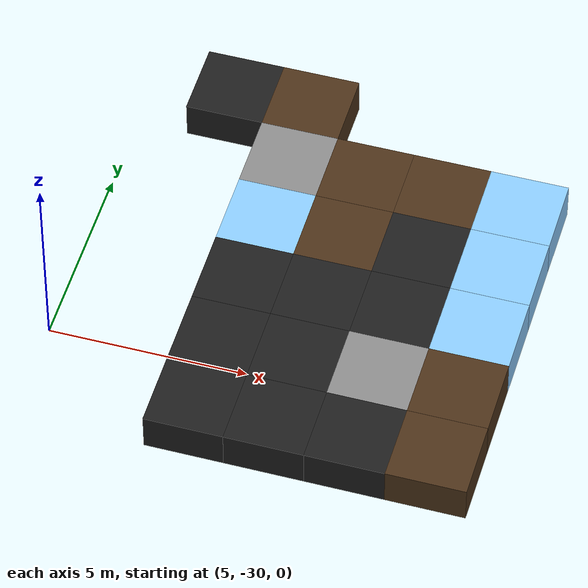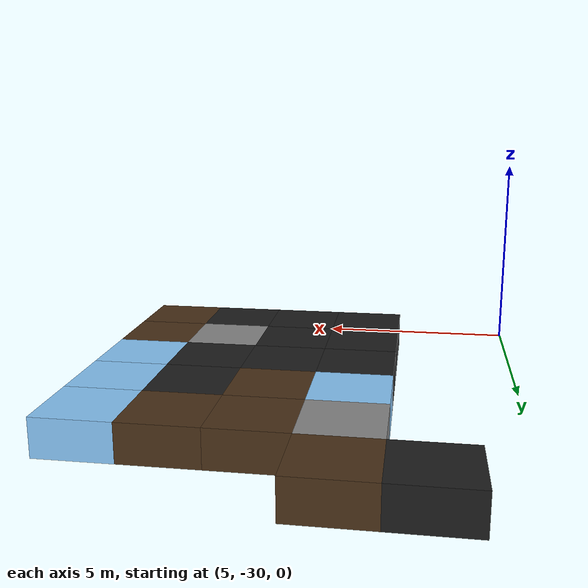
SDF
<sdf version="1.5">
 <world name="squares_example">
  <model name="tile_20_0">
   <static>true</static>
   <pose>9.000 -31.000 -0.500 0 0 0</pose>
   <link name="link">
    <collision name="col">
     <geometry><box><size>2.0 2.0 1.0</size></box></geometry>
     <surface>
      <friction>
       <ode><mu>0.4</mu><mu2>0.15</mu2><fdir1>1 0 0</fdir1><slip1>0.0</slip1><slip2>0.0</slip2></ode>
       <torsional>
        <coefficient>0.03</coefficient>
        <use_patch_radius>false</use_patch_radius>
        <surface_radius>0.12</surface_radius>
        <ode><slip>0.0</slip></ode>
       </torsional>
      </friction>
      <bounce><restitution_coefficient>0.0</restitution_coefficient><threshold>0.1</threshold></bounce>
      <contact>
       <ode><kp>1000000000.0</kp><kd>1000000.0</kd><max_vel>0.01</max_vel><min_depth>0.0</min_depth></ode>
      </contact>
     </surface>
    </collision>
    <visual name="visual">
     <geometry><box><size>2.0 2.0 1.0</size></box></geometry>
     <material>
      <diffuse>0.12 0.12 0.12 1</diffuse>
      <ambient>0 0 0 0</ambient>
      <specular>0 0 0 1</specular>
      <emissive>0 0 0 1</emissive>
     </material>
    </visual>
   </link>
  </model>
  <model name="tile_21_0">
   <static>true</static>
   <pose>11.000 -31.000 -0.500 0 0 0</pose>
   <link name="link">
    <collision name="col">
     <geometry><box><size>2.0 2.0 1.0</size></box></geometry>
     <surface>
      <friction>
       <ode><mu>0.4</mu><mu2>0.15</mu2><fdir1>1 0 0</fdir1><slip1>0.0</slip1><slip2>0.0</slip2></ode>
       <torsional>
        <coefficient>0.03</coefficient>
        <use_patch_radius>false</use_patch_radius>
        <surface_radius>0.12</surface_radius>
        <ode><slip>0.0</slip></ode>
       </torsional>
      </friction>
      <bounce><restitution_coefficient>0.0</restitution_coefficient><threshold>0.1</threshold></bounce>
      <contact>
       <ode><kp>1000000000.0</kp><kd>1000000.0</kd><max_vel>0.01</max_vel><min_depth>0.0</min_depth></ode>
      </contact>
     </surface>
    </collision>
    <visual name="visual">
     <geometry><box><size>2.0 2.0 1.0</size></box></geometry>
     <material>
      <diffuse>0.12 0.12 0.12 1</diffuse>
      <ambient>0 0 0 0</ambient>
      <specular>0 0 0 1</specular>
      <emissive>0 0 0 1</emissive>
     </material>
    </visual>
   </link>
  </model>
  <model name="tile_22_0">
   <static>true</static>
   <pose>13.000 -31.000 -0.500 0 0 0</pose>
   <link name="link">
    <collision name="col">
     <geometry><box><size>2.0 2.0 1.0</size></box></geometry>
     <surface>
      <friction>
       <ode><mu>0.4</mu><mu2>0.15</mu2><fdir1>1 0 0</fdir1><slip1>0.0</slip1><slip2>0.0</slip2></ode>
       <torsional>
        <coefficient>0.03</coefficient>
        <use_patch_radius>false</use_patch_radius>
        <surface_radius>0.12</surface_radius>
        <ode><slip>0.0</slip></ode>
       </torsional>
      </friction>
      <bounce><restitution_coefficient>0.0</restitution_coefficient><threshold>0.1</threshold></bounce>
      <contact>
       <ode><kp>1000000000.0</kp><kd>1000000.0</kd><max_vel>0.01</max_vel><min_depth>0.0</min_depth></ode>
      </contact>
     </surface>
    </collision>
    <visual name="visual">
     <geometry><box><size>2.0 2.0 1.0</size></box></geometry>
     <material>
      <diffuse>0.12 0.12 0.12 1</diffuse>
      <ambient>0 0 0 0</ambient>
      <specular>0 0 0 1</specular>
      <emissive>0 0 0 1</emissive>
     </material>
    </visual>
   </link>
  </model>
  <model name="tile_23_0">
   <static>true</static>
   <pose>15.000 -31.000 -0.500 0 0 0</pose>
   <link name="link">
    <collision name="col">
     <geometry><box><size>2.0 2.0 1.0</size></box></geometry>
     <surface>
      <friction>
       <ode><mu>0.6</mu><mu2>0.4</mu2><fdir1>1 0 0</fdir1><slip1>0.08</slip1><slip2>0.08</slip2></ode>
       <torsional>
        <coefficient>0.03</coefficient>
        <use_patch_radius>false</use_patch_radius>
        <surface_radius>0.12</surface_radius>
        <ode><slip>0.0</slip></ode>
       </torsional>
      </friction>
      <bounce><restitution_coefficient>0.0</restitution_coefficient><threshold>0.1</threshold></bounce>
      <contact>
       <ode><kp>1000000.0</kp><kd>10000.0</kd><max_vel>0.01</max_vel><min_depth>0.0</min_depth></ode>
      </contact>
     </surface>
    </collision>
    <visual name="visual">
     <geometry><box><size>2.0 2.0 1.0</size></box></geometry>
     <material>
      <diffuse>0.30 0.20 0.10 1</diffuse>
      <ambient>0 0 0 0</ambient>
      <specular>0 0 0 1</specular>
      <emissive>0 0 0 1</emissive>
     </material>
    </visual>
   </link>
  </model>
  <model name="tile_20_1">
   <static>true</static>
   <pose>9.000 -29.000 -0.500 0 0 0</pose>
   <link name="link">
    <collision name="col">
     <geometry><box><size>2.0 2.0 1.0</size></box></geometry>
     <surface>
      <friction>
       <ode><mu>0.4</mu><mu2>0.15</mu2><fdir1>1 0 0</fdir1><slip1>0.0</slip1><slip2>0.0</slip2></ode>
       <torsional>
        <coefficient>0.03</coefficient>
        <use_patch_radius>false</use_patch_radius>
        <surface_radius>0.12</surface_radius>
        <ode><slip>0.0</slip></ode>
       </torsional>
      </friction>
      <bounce><restitution_coefficient>0.0</restitution_coefficient><threshold>0.1</threshold></bounce>
      <contact>
       <ode><kp>1000000000.0</kp><kd>1000000.0</kd><max_vel>0.01</max_vel><min_depth>0.0</min_depth></ode>
      </contact>
     </surface>
    </collision>
    <visual name="visual">
     <geometry><box><size>2.0 2.0 1.0</size></box></geometry>
     <material>
      <diffuse>0.12 0.12 0.12 1</diffuse>
      <ambient>0 0 0 0</ambient>
      <specular>0 0 0 1</specular>
      <emissive>0 0 0 1</emissive>
     </material>
    </visual>
   </link>
  </model>
  <model name="tile_21_1">
   <static>true</static>
   <pose>11.000 -29.000 -0.500 0 0 0</pose>
   <link name="link">
    <collision name="col">
     <geometry><box><size>2.0 2.0 1.0</size></box></geometry>
     <surface>
      <friction>
       <ode><mu>0.4</mu><mu2>0.15</mu2><fdir1>1 0 0</fdir1><slip1>0.0</slip1><slip2>0.0</slip2></ode>
       <torsional>
        <coefficient>0.03</coefficient>
        <use_patch_radius>false</use_patch_radius>
        <surface_radius>0.12</surface_radius>
        <ode><slip>0.0</slip></ode>
       </torsional>
      </friction>
      <bounce><restitution_coefficient>0.0</restitution_coefficient><threshold>0.1</threshold></bounce>
      <contact>
       <ode><kp>1000000000.0</kp><kd>1000000.0</kd><max_vel>0.01</max_vel><min_depth>0.0</min_depth></ode>
      </contact>
     </surface>
    </collision>
    <visual name="visual">
     <geometry><box><size>2.0 2.0 1.0</size></box></geometry>
     <material>
      <diffuse>0.12 0.12 0.12 1</diffuse>
      <ambient>0 0 0 0</ambient>
      <specular>0 0 0 1</specular>
      <emissive>0 0 0 1</emissive>
     </material>
    </visual>
   </link>
  </model>
  <model name="tile_22_1">
   <static>true</static>
   <pose>13.000 -29.000 -0.500 0 0 0</pose>
   <link name="link">
    <collision name="col">
     <geometry><box><size>2.0 2.0 1.0</size></box></geometry>
     <surface>
      <friction>
       <ode><mu>0.8</mu><mu2>0.3</mu2><fdir1>1 0 0</fdir1><slip1>0.0</slip1><slip2>0.0</slip2></ode>
       <torsional>
        <coefficient>0.03</coefficient>
        <use_patch_radius>false</use_patch_radius>
        <surface_radius>0.12</surface_radius>
        <ode><slip>0.0</slip></ode>
       </torsional>
      </friction>
      <bounce><restitution_coefficient>0.0</restitution_coefficient><threshold>0.1</threshold></bounce>
      <contact>
       <ode><kp>10000000000.0</kp><kd>10000000.0</kd><max_vel>0.01</max_vel><min_depth>0.0</min_depth></ode>
      </contact>
     </surface>
    </collision>
    <visual name="visual">
     <geometry><box><size>2.0 2.0 1.0</size></box></geometry>
     <material>
      <diffuse>0.55 0.55 0.55 1</diffuse>
      <ambient>0 0 0 0</ambient>
      <specular>0 0 0 1</specular>
      <emissive>0 0 0 1</emissive>
     </material>
    </visual>
   </link>
  </model>
  <model name="tile_23_1">
   <static>true</static>
   <pose>15.000 -29.000 -0.500 0 0 0</pose>
   <link name="link">
    <collision name="col">
     <geometry><box><size>2.0 2.0 1.0</size></box></geometry>
     <surface>
      <friction>
       <ode><mu>0.6</mu><mu2>0.4</mu2><fdir1>1 0 0</fdir1><slip1>0.08</slip1><slip2>0.08</slip2></ode>
       <torsional>
        <coefficient>0.03</coefficient>
        <use_patch_radius>false</use_patch_radius>
        <surface_radius>0.12</surface_radius>
        <ode><slip>0.0</slip></ode>
       </torsional>
      </friction>
      <bounce><restitution_coefficient>0.0</restitution_coefficient><threshold>0.1</threshold></bounce>
      <contact>
       <ode><kp>1000000.0</kp><kd>10000.0</kd><max_vel>0.01</max_vel><min_depth>0.0</min_depth></ode>
      </contact>
     </surface>
    </collision>
    <visual name="visual">
     <geometry><box><size>2.0 2.0 1.0</size></box></geometry>
     <material>
      <diffuse>0.30 0.20 0.10 1</diffuse>
      <ambient>0 0 0 0</ambient>
      <specular>0 0 0 1</specular>
      <emissive>0 0 0 1</emissive>
     </material>
    </visual>
   </link>
  </model>
  <model name="tile_20_2">
   <static>true</static>
   <pose>9.000 -27.000 -0.500 0 0 0</pose>
   <link name="link">
    <collision name="col">
     <geometry><box><size>2.0 2.0 1.0</size></box></geometry>
     <surface>
      <friction>
       <ode><mu>0.4</mu><mu2>0.15</mu2><fdir1>1 0 0</fdir1><slip1>0.0</slip1><slip2>0.0</slip2></ode>
       <torsional>
        <coefficient>0.03</coefficient>
        <use_patch_radius>false</use_patch_radius>
        <surface_radius>0.12</surface_radius>
        <ode><slip>0.0</slip></ode>
       </torsional>
      </friction>
      <bounce><restitution_coefficient>0.0</restitution_coefficient><threshold>0.1</threshold></bounce>
      <contact>
       <ode><kp>1000000000.0</kp><kd>1000000.0</kd><max_vel>0.01</max_vel><min_depth>0.0</min_depth></ode>
      </contact>
     </surface>
    </collision>
    <visual name="visual">
     <geometry><box><size>2.0 2.0 1.0</size></box></geometry>
     <material>
      <diffuse>0.12 0.12 0.12 1</diffuse>
      <ambient>0 0 0 0</ambient>
      <specular>0 0 0 1</specular>
      <emissive>0 0 0 1</emissive>
     </material>
    </visual>
   </link>
  </model>
  <model name="tile_21_2">
   <static>true</static>
   <pose>11.000 -27.000 -0.500 0 0 0</pose>
   <link name="link">
    <collision name="col">
     <geometry><box><size>2.0 2.0 1.0</size></box></geometry>
     <surface>
      <friction>
       <ode><mu>0.4</mu><mu2>0.15</mu2><fdir1>1 0 0</fdir1><slip1>0.0</slip1><slip2>0.0</slip2></ode>
       <torsional>
        <coefficient>0.03</coefficient>
        <use_patch_radius>false</use_patch_radius>
        <surface_radius>0.12</surface_radius>
        <ode><slip>0.0</slip></ode>
       </torsional>
      </friction>
      <bounce><restitution_coefficient>0.0</restitution_coefficient><threshold>0.1</threshold></bounce>
      <contact>
       <ode><kp>1000000000.0</kp><kd>1000000.0</kd><max_vel>0.01</max_vel><min_depth>0.0</min_depth></ode>
      </contact>
     </surface>
    </collision>
    <visual name="visual">
     <geometry><box><size>2.0 2.0 1.0</size></box></geometry>
     <material>
      <diffuse>0.12 0.12 0.12 1</diffuse>
      <ambient>0 0 0 0</ambient>
      <specular>0 0 0 1</specular>
      <emissive>0 0 0 1</emissive>
     </material>
    </visual>
   </link>
  </model>
  <model name="tile_22_2">
   <static>true</static>
   <pose>13.000 -27.000 -0.500 0 0 0</pose>
   <link name="link">
    <collision name="col">
     <geometry><box><size>2.0 2.0 1.0</size></box></geometry>
     <surface>
      <friction>
       <ode><mu>0.4</mu><mu2>0.15</mu2><fdir1>1 0 0</fdir1><slip1>0.0</slip1><slip2>0.0</slip2></ode>
       <torsional>
        <coefficient>0.03</coefficient>
        <use_patch_radius>false</use_patch_radius>
        <surface_radius>0.12</surface_radius>
        <ode><slip>0.0</slip></ode>
       </torsional>
      </friction>
      <bounce><restitution_coefficient>0.0</restitution_coefficient><threshold>0.1</threshold></bounce>
      <contact>
       <ode><kp>1000000000.0</kp><kd>1000000.0</kd><max_vel>0.01</max_vel><min_depth>0.0</min_depth></ode>
      </contact>
     </surface>
    </collision>
    <visual name="visual">
     <geometry><box><size>2.0 2.0 1.0</size></box></geometry>
     <material>
      <diffuse>0.12 0.12 0.12 1</diffuse>
      <ambient>0 0 0 0</ambient>
      <specular>0 0 0 1</specular>
      <emissive>0 0 0 1</emissive>
     </material>
    </visual>
   </link>
  </model>
  <model name="tile_23_2">
   <static>true</static>
   <pose>15.000 -27.000 -0.500 0 0 0</pose>
   <link name="link">
    <collision name="col">
     <geometry><box><size>2.0 2.0 1.0</size></box></geometry>
     <surface>
      <friction>
       <ode><mu>0.03</mu><mu2>0.02</mu2><fdir1>1 0 0</fdir1><slip1>0.03</slip1><slip2>0.03</slip2></ode>
       <torsional>
        <coefficient>0.005</coefficient>
        <use_patch_radius>false</use_patch_radius>
        <surface_radius>0.12</surface_radius>
        <ode><slip>0.01</slip></ode>
       </torsional>
      </friction>
      <bounce><restitution_coefficient>0.0</restitution_coefficient><threshold>0.1</threshold></bounce>
      <contact>
       <ode><kp>10000000.0</kp><kd>1000.0</kd><max_vel>0.01</max_vel><min_depth>0.0</min_depth></ode>
      </contact>
     </surface>
    </collision>
    <visual name="visual">
     <geometry><box><size>2.0 2.0 1.0</size></box></geometry>
     <material>
      <diffuse>0.55 0.80 1.00 1</diffuse>
      <ambient>0 0 0 0</ambient>
      <specular>0 0 0 1</specular>
      <emissive>0 0 0 1</emissive>
     </material>
    </visual>
   </link>
  </model>
  <model name="tile_20_3">
   <static>true</static>
   <pose>9.000 -25.000 -0.500 0 0 0</pose>
   <link name="link">
    <collision name="col">
     <geometry><box><size>2.0 2.0 1.0</size></box></geometry>
     <surface>
      <friction>
       <ode><mu>0.03</mu><mu2>0.02</mu2><fdir1>1 0 0</fdir1><slip1>0.03</slip1><slip2>0.03</slip2></ode>
       <torsional>
        <coefficient>0.005</coefficient>
        <use_patch_radius>false</use_patch_radius>
        <surface_radius>0.12</surface_radius>
        <ode><slip>0.01</slip></ode>
       </torsional>
      </friction>
      <bounce><restitution_coefficient>0.0</restitution_coefficient><threshold>0.1</threshold></bounce>
      <contact>
       <ode><kp>10000000.0</kp><kd>1000.0</kd><max_vel>0.01</max_vel><min_depth>0.0</min_depth></ode>
      </contact>
     </surface>
    </collision>
    <visual name="visual">
     <geometry><box><size>2.0 2.0 1.0</size></box></geometry>
     <material>
      <diffuse>0.55 0.80 1.00 1</diffuse>
      <ambient>0 0 0 0</ambient>
      <specular>0 0 0 1</specular>
      <emissive>0 0 0 1</emissive>
     </material>
    </visual>
   </link>
  </model>
  <model name="tile_21_3">
   <static>true</static>
   <pose>11.000 -25.000 -0.500 0 0 0</pose>
   <link name="link">
    <collision name="col">
     <geometry><box><size>2.0 2.0 1.0</size></box></geometry>
     <surface>
      <friction>
       <ode><mu>0.6</mu><mu2>0.4</mu2><fdir1>1 0 0</fdir1><slip1>0.08</slip1><slip2>0.08</slip2></ode>
       <torsional>
        <coefficient>0.03</coefficient>
        <use_patch_radius>false</use_patch_radius>
        <surface_radius>0.12</surface_radius>
        <ode><slip>0.0</slip></ode>
       </torsional>
      </friction>
      <bounce><restitution_coefficient>0.0</restitution_coefficient><threshold>0.1</threshold></bounce>
      <contact>
       <ode><kp>1000000.0</kp><kd>10000.0</kd><max_vel>0.01</max_vel><min_depth>0.0</min_depth></ode>
      </contact>
     </surface>
    </collision>
    <visual name="visual">
     <geometry><box><size>2.0 2.0 1.0</size></box></geometry>
     <material>
      <diffuse>0.30 0.20 0.10 1</diffuse>
      <ambient>0 0 0 0</ambient>
      <specular>0 0 0 1</specular>
      <emissive>0 0 0 1</emissive>
     </material>
    </visual>
   </link>
  </model>
  <model name="tile_22_3">
   <static>true</static>
   <pose>13.000 -25.000 -0.500 0 0 0</pose>
   <link name="link">
    <collision name="col">
     <geometry><box><size>2.0 2.0 1.0</size></box></geometry>
     <surface>
      <friction>
       <ode><mu>0.4</mu><mu2>0.15</mu2><fdir1>1 0 0</fdir1><slip1>0.0</slip1><slip2>0.0</slip2></ode>
       <torsional>
        <coefficient>0.03</coefficient>
        <use_patch_radius>false</use_patch_radius>
        <surface_radius>0.12</surface_radius>
        <ode><slip>0.0</slip></ode>
       </torsional>
      </friction>
      <bounce><restitution_coefficient>0.0</restitution_coefficient><threshold>0.1</threshold></bounce>
      <contact>
       <ode><kp>1000000000.0</kp><kd>1000000.0</kd><max_vel>0.01</max_vel><min_depth>0.0</min_depth></ode>
      </contact>
     </surface>
    </collision>
    <visual name="visual">
     <geometry><box><size>2.0 2.0 1.0</size></box></geometry>
     <material>
      <diffuse>0.12 0.12 0.12 1</diffuse>
      <ambient>0 0 0 0</ambient>
      <specular>0 0 0 1</specular>
      <emissive>0 0 0 1</emissive>
     </material>
    </visual>
   </link>
  </model>
  <model name="tile_23_3">
   <static>true</static>
   <pose>15.000 -25.000 -0.500 0 0 0</pose>
   <link name="link">
    <collision name="col">
     <geometry><box><size>2.0 2.0 1.0</size></box></geometry>
     <surface>
      <friction>
       <ode><mu>0.03</mu><mu2>0.02</mu2><fdir1>1 0 0</fdir1><slip1>0.03</slip1><slip2>0.03</slip2></ode>
       <torsional>
        <coefficient>0.005</coefficient>
        <use_patch_radius>false</use_patch_radius>
        <surface_radius>0.12</surface_radius>
        <ode><slip>0.01</slip></ode>
       </torsional>
      </friction>
      <bounce><restitution_coefficient>0.0</restitution_coefficient><threshold>0.1</threshold></bounce>
      <contact>
       <ode><kp>10000000.0</kp><kd>1000.0</kd><max_vel>0.01</max_vel><min_depth>0.0</min_depth></ode>
      </contact>
     </surface>
    </collision>
    <visual name="visual">
     <geometry><box><size>2.0 2.0 1.0</size></box></geometry>
     <material>
      <diffuse>0.55 0.80 1.00 1</diffuse>
      <ambient>0 0 0 0</ambient>
      <specular>0 0 0 1</specular>
      <emissive>0 0 0 1</emissive>
     </material>
    </visual>
   </link>
  </model>
  <model name="tile_20_4">
   <static>true</static>
   <pose>9.000 -23.000 -0.500 0 0 0</pose>
   <link name="link">
    <collision name="col">
     <geometry><box><size>2.0 2.0 1.0</size></box></geometry>
     <surface>
      <friction>
       <ode><mu>0.8</mu><mu2>0.3</mu2><fdir1>1 0 0</fdir1><slip1>0.0</slip1><slip2>0.0</slip2></ode>
       <torsional>
        <coefficient>0.03</coefficient>
        <use_patch_radius>false</use_patch_radius>
        <surface_radius>0.12</surface_radius>
        <ode><slip>0.0</slip></ode>
       </torsional>
      </friction>
      <bounce><restitution_coefficient>0.0</restitution_coefficient><threshold>0.1</threshold></bounce>
      <contact>
       <ode><kp>10000000000.0</kp><kd>10000000.0</kd><max_vel>0.01</max_vel><min_depth>0.0</min_depth></ode>
      </contact>
     </surface>
    </collision>
    <visual name="visual">
     <geometry><box><size>2.0 2.0 1.0</size></box></geometry>
     <material>
      <diffuse>0.55 0.55 0.55 1</diffuse>
      <ambient>0 0 0 0</ambient>
      <specular>0 0 0 1</specular>
      <emissive>0 0 0 1</emissive>
     </material>
    </visual>
   </link>
  </model>
  <model name="tile_21_4">
   <static>true</static>
   <pose>11.000 -23.000 -0.500 0 0 0</pose>
   <link name="link">
    <collision name="col">
     <geometry><box><size>2.0 2.0 1.0</size></box></geometry>
     <surface>
      <friction>
       <ode><mu>0.6</mu><mu2>0.4</mu2><fdir1>1 0 0</fdir1><slip1>0.08</slip1><slip2>0.08</slip2></ode>
       <torsional>
        <coefficient>0.03</coefficient>
        <use_patch_radius>false</use_patch_radius>
        <surface_radius>0.12</surface_radius>
        <ode><slip>0.0</slip></ode>
       </torsional>
      </friction>
      <bounce><restitution_coefficient>0.0</restitution_coefficient><threshold>0.1</threshold></bounce>
      <contact>
       <ode><kp>1000000.0</kp><kd>10000.0</kd><max_vel>0.01</max_vel><min_depth>0.0</min_depth></ode>
      </contact>
     </surface>
    </collision>
    <visual name="visual">
     <geometry><box><size>2.0 2.0 1.0</size></box></geometry>
     <material>
      <diffuse>0.30 0.20 0.10 1</diffuse>
      <ambient>0 0 0 0</ambient>
      <specular>0 0 0 1</specular>
      <emissive>0 0 0 1</emissive>
     </material>
    </visual>
   </link>
  </model>
  <model name="tile_22_4">
   <static>true</static>
   <pose>13.000 -23.000 -0.500 0 0 0</pose>
   <link name="link">
    <collision name="col">
     <geometry><box><size>2.0 2.0 1.0</size></box></geometry>
     <surface>
      <friction>
       <ode><mu>0.6</mu><mu2>0.4</mu2><fdir1>1 0 0</fdir1><slip1>0.08</slip1><slip2>0.08</slip2></ode>
       <torsional>
        <coefficient>0.03</coefficient>
        <use_patch_radius>false</use_patch_radius>
        <surface_radius>0.12</surface_radius>
        <ode><slip>0.0</slip></ode>
       </torsional>
      </friction>
      <bounce><restitution_coefficient>0.0</restitution_coefficient><threshold>0.1</threshold></bounce>
      <contact>
       <ode><kp>1000000.0</kp><kd>10000.0</kd><max_vel>0.01</max_vel><min_depth>0.0</min_depth></ode>
      </contact>
     </surface>
    </collision>
    <visual name="visual">
     <geometry><box><size>2.0 2.0 1.0</size></box></geometry>
     <material>
      <diffuse>0.30 0.20 0.10 1</diffuse>
      <ambient>0 0 0 0</ambient>
      <specular>0 0 0 1</specular>
      <emissive>0 0 0 1</emissive>
     </material>
    </visual>
   </link>
  </model>
  <model name="tile_23_4">
   <static>true</static>
   <pose>15.000 -23.000 -0.500 0 0 0</pose>
   <link name="link">
    <collision name="col">
     <geometry><box><size>2.0 2.0 1.0</size></box></geometry>
     <surface>
      <friction>
       <ode><mu>0.03</mu><mu2>0.02</mu2><fdir1>1 0 0</fdir1><slip1>0.03</slip1><slip2>0.03</slip2></ode>
       <torsional>
        <coefficient>0.005</coefficient>
        <use_patch_radius>false</use_patch_radius>
        <surface_radius>0.12</surface_radius>
        <ode><slip>0.01</slip></ode>
       </torsional>
      </friction>
      <bounce><restitution_coefficient>0.0</restitution_coefficient><threshold>0.1</threshold></bounce>
      <contact>
       <ode><kp>10000000.0</kp><kd>1000.0</kd><max_vel>0.01</max_vel><min_depth>0.0</min_depth></ode>
      </contact>
     </surface>
    </collision>
    <visual name="visual">
     <geometry><box><size>2.0 2.0 1.0</size></box></geometry>
     <material>
      <diffuse>0.55 0.80 1.00 1</diffuse>
      <ambient>0 0 0 0</ambient>
      <specular>0 0 0 1</specular>
      <emissive>0 0 0 1</emissive>
     </material>
    </visual>
   </link>
  </model>
  <model name="tile_19_5">
   <static>true</static>
   <pose>7.000 -21.000 -0.500 0 0 0</pose>
   <link name="link">
    <collision name="col">
     <geometry><box><size>2.0 2.0 1.0</size></box></geometry>
     <surface>
      <friction>
       <ode><mu>0.4</mu><mu2>0.15</mu2><fdir1>1 0 0</fdir1><slip1>0.0</slip1><slip2>0.0</slip2></ode>
       <torsional>
        <coefficient>0.03</coefficient>
        <use_patch_radius>false</use_patch_radius>
        <surface_radius>0.12</surface_radius>
        <ode><slip>0.0</slip></ode>
       </torsional>
      </friction>
      <bounce><restitution_coefficient>0.0</restitution_coefficient><threshold>0.1</threshold></bounce>
      <contact>
       <ode><kp>1000000000.0</kp><kd>1000000.0</kd><max_vel>0.01</max_vel><min_depth>0.0</min_depth></ode>
      </contact>
     </surface>
    </collision>
    <visual name="visual">
     <geometry><box><size>2.0 2.0 1.0</size></box></geometry>
     <material>
      <diffuse>0.12 0.12 0.12 1</diffuse>
      <ambient>0 0 0 0</ambient>
      <specular>0 0 0 1</specular>
      <emissive>0 0 0 1</emissive>
     </material>
    </visual>
   </link>
  </model>
  <model name="tile_20_5">
   <static>true</static>
   <pose>9.000 -21.000 -0.500 0 0 0</pose>
   <link name="link">
    <collision name="col">
     <geometry><box><size>2.0 2.0 1.0</size></box></geometry>
     <surface>
      <friction>
       <ode><mu>0.6</mu><mu2>0.4</mu2><fdir1>1 0 0</fdir1><slip1>0.08</slip1><slip2>0.08</slip2></ode>
       <torsional>
        <coefficient>0.03</coefficient>
        <use_patch_radius>false</use_patch_radius>
        <surface_radius>0.12</surface_radius>
        <ode><slip>0.0</slip></ode>
       </torsional>
      </friction>
      <bounce><restitution_coefficient>0.0</restitution_coefficient><threshold>0.1</threshold></bounce>
      <contact>
       <ode><kp>1000000.0</kp><kd>10000.0</kd><max_vel>0.01</max_vel><min_depth>0.0</min_depth></ode>
      </contact>
     </surface>
    </collision>
    <visual name="visual">
     <geometry><box><size>2.0 2.0 1.0</size></box></geometry>
     <material>
      <diffuse>0.30 0.20 0.10 1</diffuse>
      <ambient>0 0 0 0</ambient>
      <specular>0 0 0 1</specular>
      <emissive>0 0 0 1</emissive>
     </material>
    </visual>
   </link>
  </model>
 </world>
</sdf>
